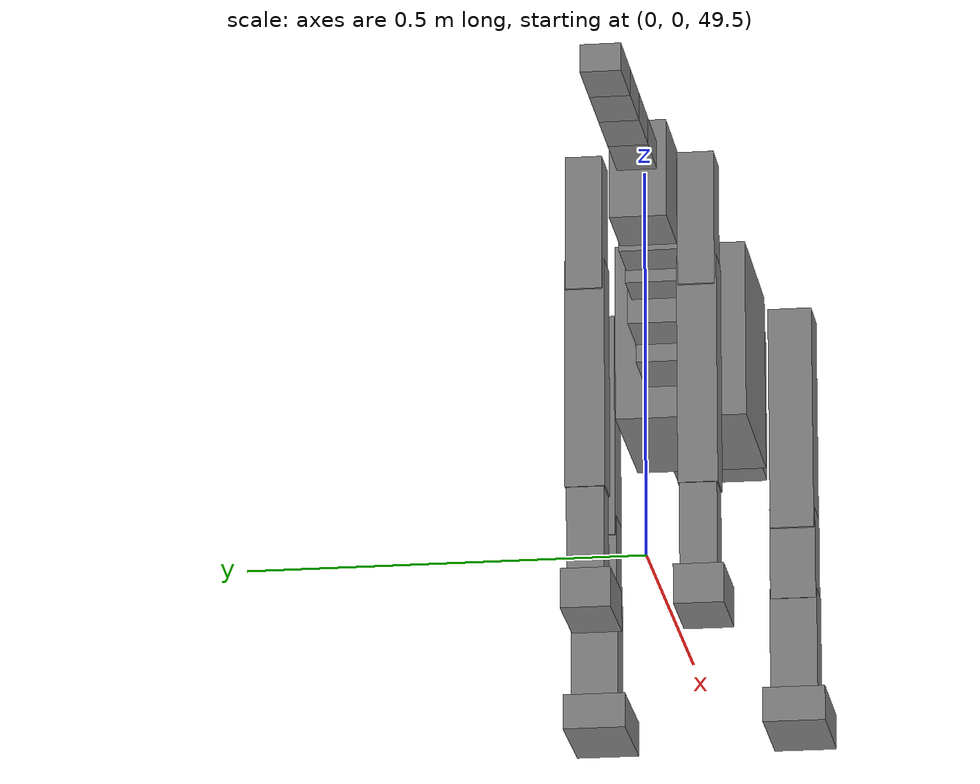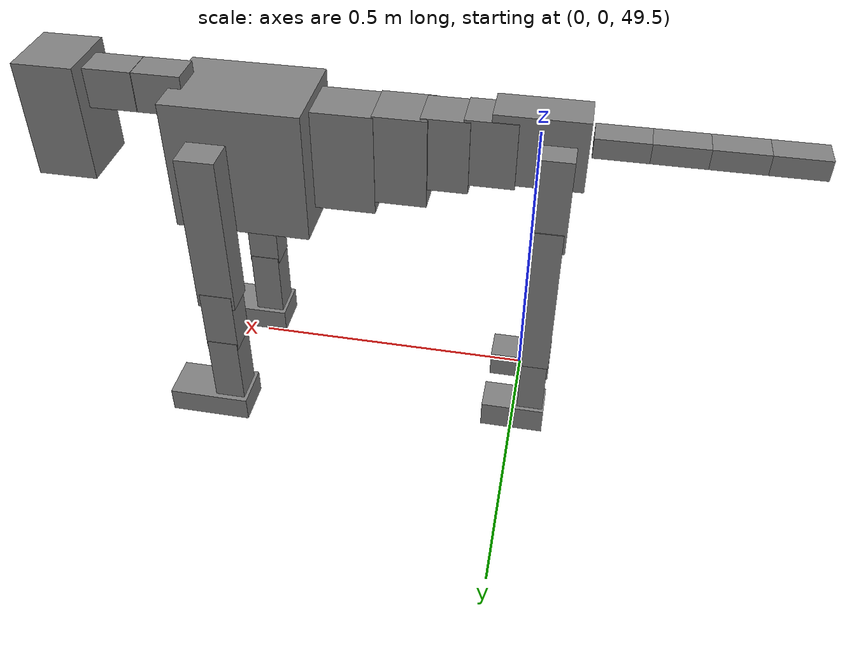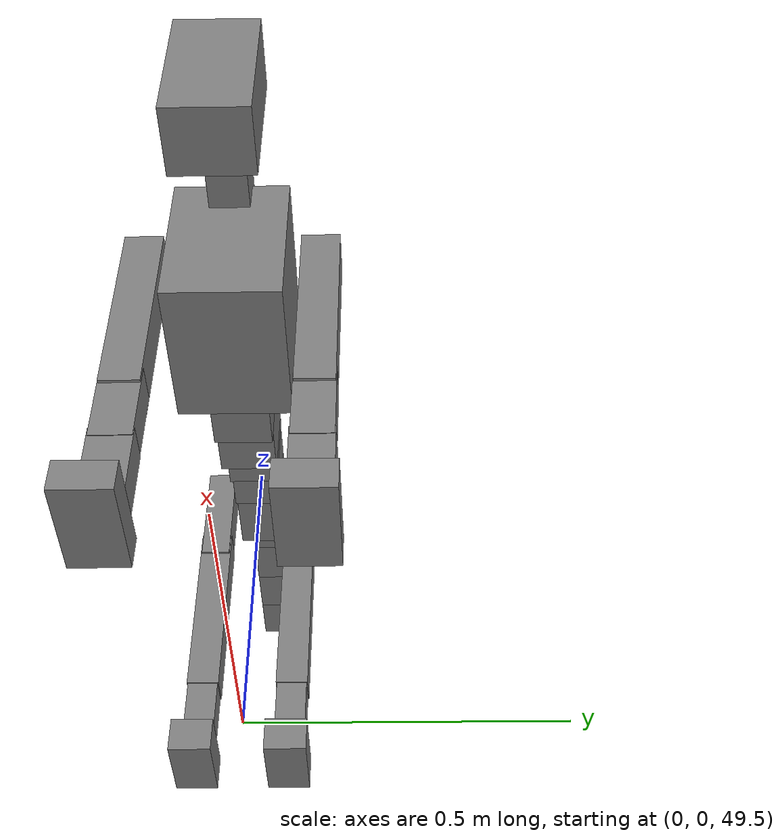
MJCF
<mujoco model="dog">

    <default>
        <joint armature="0.02" stiffness="1" damping="0.2" limited="true"/>
        <geom condim="3" friction="1 0.05 0.05" margin="0.01"/>
        <motor ctrllimited="true" ctrlrange="-1.0 1.0" forcelimited="true" gear="50"/>
    </default>

    <compiler inertiafromgeom="true" angle="radian"/>

    <option timestep="0.016" iterations="50" tolerance="1e-10" solver="Newton" jacobian="dense" cone="pyramidal"/>

    <size nconmax="20000" njmax="60000" nstack="5000000"/>
    <visual>
        <map force="0.1" zfar="30"/>
        <rgba haze="0.15 0.25 0.35 1"/>
        <quality shadowsize="2048"/>
        <global offwidth="800" offheight="800"/>
    </visual>

    <asset>
        <texture type="skybox" builtin="gradient" rgb1="0.3 0.5 0.7" rgb2="0 0 0" width="512" height="512"/>
        <texture name="texplane" type="2d" builtin="checker" rgb1=".2 .3 .4" rgb2=".1 0.15 0.2" width="512" height="512"
                 mark="cross" markrgb=".8 .8 .8"/>
        <texture name="texgeom" type="cube" builtin="flat" mark="cross" width="127" height="1278" rgb1="0.8 0.6 0.4"
                 rgb2="0.8 0.6 0.4" markrgb="1 1 1" random="0.01"/>

        <material name="matplane" reflectance="0.3" texture="texplane" texrepeat="1 1" texuniform="true"/>
        <material name="matgeom" texture="texgeom" texuniform="true" rgba="0.8 0.6 .4 1"/>
    </asset>

    <worldbody>
        <geom name="floor" pos="0 0 0" size="0 0 .25" type="plane" material="matplane" condim="3"/>

        <light directional="false" diffuse=".2 .2 .2" specular="0 0 0" pos="0 0 5" dir="0 0 -1" castshadow="false"/>
        <light mode="targetbodycom" target="torso" directional="false" diffuse=".8 .8 .8" specular="0.3 0.3 0.3"
               pos="0 0 4.0" dir="0 0 -1"/>

        <body name="root" pos="0 0 50">
            <freejoint name="root_1"/>
            <geom type="box" pos="0 0 -0.02" size="0.0774  0.0358  0.063" density="2030"/>

            <body name="spine1" pos="0.054 0 0">
                <joint name="spine1_y" axis="0 1 0" range="0 0.7" limited="true"/>
                <geom type="box" pos="0.02375 0 -0.03" size="0.04375  0.0375  0.05985" density="2030"/>

                <body name="spine2" pos="0.0612 0 0">
                    <joint name="spine2_y" axis="0 1 0" range="-0.15 0.15" limited="true"/>
                    <geom type="box" pos="0.03555  0  -0.04" size="0.04055  0.039  0.06615" density="2030"/>

                    <body name="spine3" pos="0.0730 0 0">
                        <joint name="spine3_y" axis="0 1 0" range="-0.15 0.15" limited="true"/>
                        <geom type="box" pos="0.03555  0  -0.057" size="0.04555  0.0445  0.081" density="2030"/>

                        <body name="spine4" pos="0.0780 0 0">
                            <joint name="spine4_y" axis="0 1 0" range="-0.15 0.15" limited="true"/>
                            <geom type="box" pos="0.05265  0  -0.07" size="0.05265  0.045  0.09135" density="2030"/>

                            <body name="torso" pos="0.1082 0 0">
                                <joint name="torso_y" axis="0 1 0" range="-0.15 0.15" limited="true"/>
                                <geom type="box" pos="0.11925  0  -0.085" size="0.11925  0.085  0.11745"
                                      density="2030"/>

                                <body name="neck1" pos="0.2160  0   0.0180">
                                    <joint name="neck1_y" axis="0 1 0" range="-1.2  -1" limited="true"/>
                                    <geom type="box" pos="0.0423  0  0" size="0.0423  0.03  0.036" density="2325"/>

                                    <body name="neck2" pos="0.0853  0  0">
                                        <joint name="neck2_y" axis="0 1 0" range="0.1  0" limited="true"/>
                                        <geom type="box" pos="0.0423  0  0" size="0.0423  0.03  0.036" density="2325"/>

                                        <body name="head" pos="0.0853  0  0">
                                            <joint name="head_y" axis="0 1 0" range="-0.3  -0.2" limited="true"/>
                                            <geom type="box" pos="0.0531  0  -0.055" size="0.0531  0.06  0.1044"
                                                  density="4030"/>

                                        </body>
                                    </body>
                                </body>

                                <body name="front_shoulder" pos="0.156  0   -0.0480">
                                    <joint name="front_shoulder_y" axis="0 1 0" range="-1 1.5" limited="true"/>
                                    <geom type="box" pos="0 0.13 -0.1227" size="0.0335  0.0286  0.1494" density="1158"/>
                                    <geom type="box" pos="0 -0.13 -0.1227" size="0.0335  0.0286  0.1494"
                                          density="1158"/>

                                    <body name="front_elbow" pos="0  0  -0.2454">
                                        <joint name="front_elbow_y" axis="0 1 0" range="-2 0" limited="true"/>
                                        <geom type="box" pos="0 0.13 -0.0606" size="0.0288  0.0295  0.0606"
                                              density="1081"/>
                                        <geom type="box" pos="0 -0.13 -0.0606" size="0.0288  0.0295  0.0606"
                                              density="1081"/>

                                        <body name="front_wrist" pos="0  0  -0.1212">
                                            <joint name="front_wrist_y" axis="0 1 0" range="-0.2 0" limited="true"/>
                                            <geom type="box" pos="0 0.13 -0.0675" size="0.0276  0.0306  0.0807"
                                                  density="1664"/>
                                            <geom type="box" pos="0 -0.13 -0.0675" size="0.0276  0.0306  0.0807"
                                                  density="1664"/>

                                            <body name="front_finger_end" pos="0  0  -0.1351">
                                                <joint name="front_finger_y" axis="0 1 0" range="-0.4 1"
                                                       limited="true"/>
                                                <geom type="box" pos="0.0405  0.13  -0.0079"
                                                      size="0.0742  0.0405  0.0229" density="1515"/>
                                                <geom type="box" pos="0.0405  -0.13  -0.0079"
                                                      size="0.0742  0.0405  0.0229" density="1515"/>

                                            </body>

                                        </body>
                                    </body>
                                </body>

                            </body>
                        </body>
                    </body>
                </body>
            </body>

            <body name="back_hip" pos="-0.03 0 -0.018">
                <joint name="back_hip_y" axis="0 1 0" range="-1.5 0.3" limited="true"/>
                <geom type="box" pos="0 0.07 -0.0636" size="0.0292  0.0229  0.0864" density="1154"/>
                <geom type="box" pos="0 -0.07 -0.0636" size="0.0292  0.0229  0.0864" density="1154"/>

                <body name="back_knee" pos="0  0  -0.1272">
                    <joint name="back_knee_y" axis="0 1 0" range="0 2.8" limited="true"/>
                    <geom type="box" pos="0 0.07 -0.1315" size="0.0252  0.0248  0.1470" density="1227"/>
                    <geom type="box" pos="0 -0.07 -0.1315" size="0.0252  0.0248  0.1470" density="1227"/>

                    <body name="back_ankle" pos="0  0  -0.2630">
                        <joint name="back_ankle_y" axis="0 1 0" range="-2.2 0" limited="true"/>
                        <geom type="box" pos="0 0.07 -0.0675" size="0.0233  0.0233  0.0788" density="1284"/>
                        <geom type="box" pos="0 -0.07 -0.0675" size="0.0233  0.0233  0.0788" density="1284"/>

                        <body name="back_toe_end" pos="0  0  -0.1350">
                            <joint name="back_toe_y" axis="0 1 0" range="-0.4 1" limited="true"/>
                            <geom type="box" pos="0.0312  0.07  -0.0102" size="0.0573  0.0312  0.0252" density="1515"/>
                            <geom type="box" pos="0.0312  -0.07  -0.0102" size="0.0573  0.0312  0.0252" density="1515"/>

                        </body>
                    </body>
                </body>
            </body>

            <body name="tail1" pos="-0.074 0 -0.006">
                <joint name="tail1_y" axis="0 1 0" range="-0.2 0.2" limited="true"/>
                <geom type="box" pos="-0.0536  0  0" size="0.045  0.025  0.0175" density="1587"/>

                <body name="tail2" pos="-0.09 0 0">
                    <joint name="tail2_y" axis="0 1 0" range="-0.2 0.2" limited="true"/>
                    <geom type="box" pos="-0.0536  0  0" size="0.045  0.025  0.0175" density="1587"/>

                    <body name="tail3" pos="-0.09 0 0">
                        <joint name="tail3_y" axis="0 1 0" range="-0.2 0.2" limited="true"/>
                        <geom type="box" pos="-0.0536  0  0" size="0.045  0.025  0.0175" density="1587"/>

                        <body name="tail4" pos="-0.09 0 0">
                            <joint name="tail4_y" axis="0 1 0" range="-0.2 0.2" limited="true"/>
                            <geom type="box" pos="-0.0536  0  0" size="0.045  0.025  0.0175" density="1587"/>

                        </body>
                    </body>
                </body>
            </body>
        </body>
    </worldbody>

    <actuator>
        <motor joint="spine1_y" forcerange="-150 150     "/>
        <motor joint="spine2_y" forcerange="-150 150     "/>
        <motor joint="spine3_y" forcerange="-150 150     "/>
        <motor joint="spine4_y" forcerange="-150 150     "/>
        <motor joint="torso_y" forcerange="-150 150     "/>
        <motor joint="neck1_y" forcerange="-100 100       "/>
        <motor joint="neck2_y" forcerange="-100 100       "/>
        <motor joint="head_y" forcerange="-150 150       "/>
        <motor joint="front_shoulder_y" forcerange="-122.95 167.66"/>
        <motor joint="front_elbow_y" forcerange="-176.17 138.19"/>
        <motor joint="front_wrist_y" forcerange="-111.54 133.40"/>
        <motor joint="front_finger_y" forcerange="-85.94 89.84"/>
        <motor joint="back_hip_y" forcerange="-205.36 300.24"/>
        <motor joint="back_knee_y" forcerange="-290.67 270.31"/>
        <motor joint="back_angle_y" forcerange="-54.16 219.36"/>
        <motor joint="back_toe_y" forcerange="-32.77 137.21"/>
        <motor joint="tail1_y" forcerange="-50 50     "/>
        <motor joint="tail2_y" forcerange="-50 50     "/>
        <motor joint="tail3_y" forcerange="-50 50     "/>
        <motor joint="tail4_y" forcerange="-50 50     "/>
    </actuator>
</mujoco>
